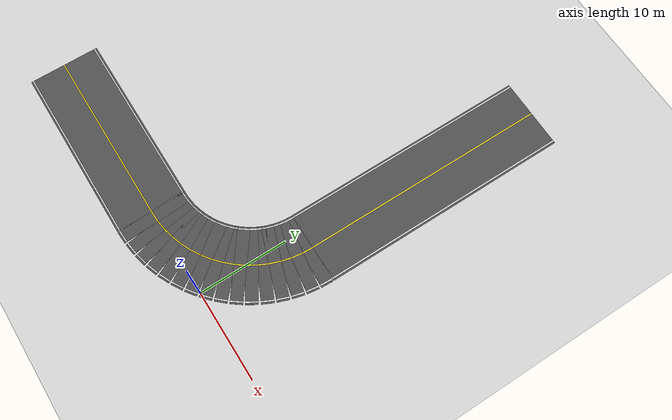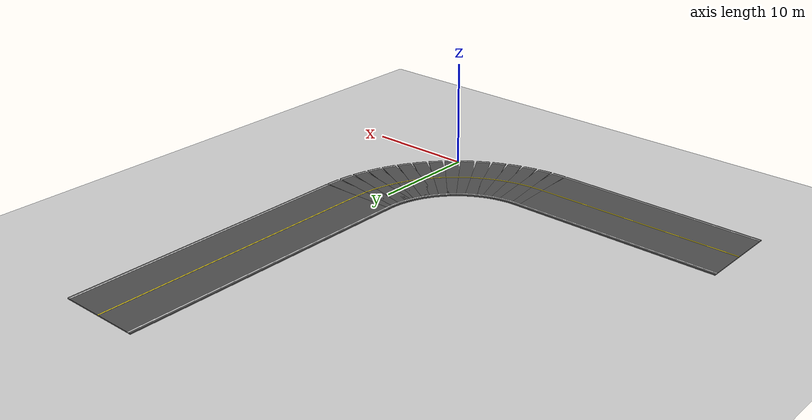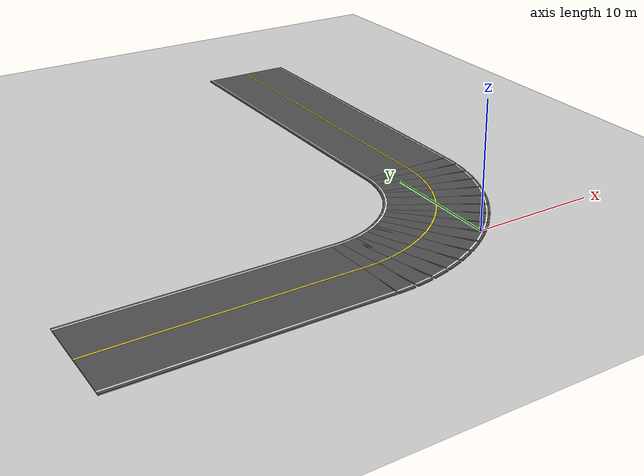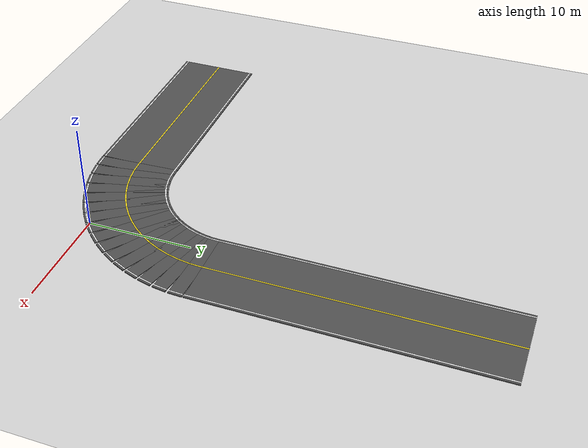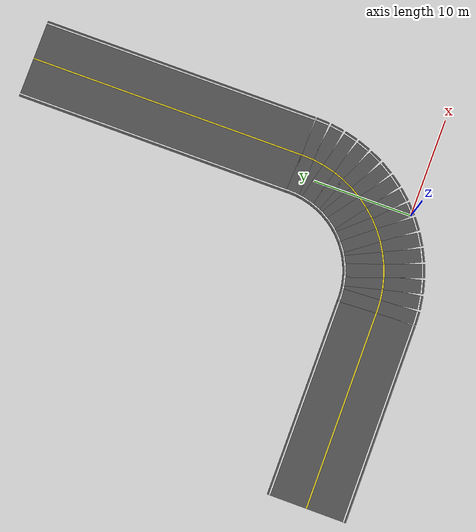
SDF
<?xml version="1.0"?>
<!-- Generated by scripts/generate_curve_course.py; dimensions are metres. -->
<sdf version="1.6">
  <world name="safe_drive_curve_course">
    <physics name="ode" type="ode">
      <max_step_size>0.001</max_step_size>
      <real_time_factor>1.0</real_time_factor>
      <real_time_update_rate>1000</real_time_update_rate>
    </physics>
    <gravity>0 0 -9.81</gravity>
    <include><uri>model://ground_plane</uri><pose>0 0 -0.1 0 0 0</pose></include>
    <include><uri>model://sun</uri></include>
    <scene><ambient>0.45 0.45 0.45 1</ambient><background>0.7 0.85 1 1</background></scene>
    <model name="curve_road"><static>true</static><link name="surface">
        <collision name="west_collision"><pose>-20.0000 0.0000 -0.0500 0 0 0.000000</pose><geometry><box><size>20.0000 8.0000 0.1</size></box></geometry></collision>
        <visual name="west_asphalt"><pose>-20.0000 0.0000 -0.0450 0 0 0.000000</pose><geometry><box><size>20.0000 8.0000 0.1</size></box></geometry><material><script><uri>file://safe_drive_road/materials/scripts</uri><uri>file://safe_drive_road/materials/textures</uri><name>SafeDrive/Asphalt</name></script></material></visual>
        <visual name="west_center"><pose>-20.0000 0.0000 -0.0350 0 0 0.000000</pose><geometry><box><size>20.0000 0.1200 0.1</size></box></geometry><material><ambient>0.95 0.85 0.10 1</ambient><diffuse>0.95 0.85 0.10 1</diffuse></material></visual>
        <visual name="west_edge_-1"><pose>-20.0000 -3.7500 -0.0340 0 0 0.000000</pose><geometry><box><size>20.0000 0.1200 0.1</size></box></geometry><material><ambient>0.95 0.95 0.95 1</ambient><diffuse>0.95 0.95 0.95 1</diffuse></material></visual>
        <visual name="west_edge_1"><pose>-20.0000 3.7500 -0.0340 0 0 0.000000</pose><geometry><box><size>20.0000 0.1200 0.1</size></box></geometry><material><ambient>0.95 0.95 0.95 1</ambient><diffuse>0.95 0.95 0.95 1</diffuse></material></visual>
        <collision name="north_collision"><pose>2.0000 26.0000 -0.0500 0 0 1.570796</pose><geometry><box><size>28.0000 8.0000 0.1</size></box></geometry></collision>
        <visual name="north_asphalt"><pose>2.0000 26.0000 -0.0450 0 0 1.570796</pose><geometry><box><size>28.0000 8.0000 0.1</size></box></geometry><material><script><uri>file://safe_drive_road/materials/scripts</uri><uri>file://safe_drive_road/materials/textures</uri><name>SafeDrive/Asphalt</name></script></material></visual>
        <visual name="north_center"><pose>2.0000 26.0000 -0.0350 0 0 1.570796</pose><geometry><box><size>28.0000 0.1200 0.1</size></box></geometry><material><ambient>0.95 0.85 0.10 1</ambient><diffuse>0.95 0.85 0.10 1</diffuse></material></visual>
        <visual name="north_edge_-1"><pose>5.7500 26.0000 -0.0340 0 0 1.570796</pose><geometry><box><size>28.0000 0.1200 0.1</size></box></geometry><material><ambient>0.95 0.95 0.95 1</ambient><diffuse>0.95 0.95 0.95 1</diffuse></material></visual>
        <visual name="north_edge_1"><pose>-1.7500 26.0000 -0.0340 0 0 1.570796</pose><geometry><box><size>28.0000 0.1200 0.1</size></box></geometry><material><ambient>0.95 0.95 0.95 1</ambient><diffuse>0.95 0.95 0.95 1</diffuse></material></visual>
        <collision name="bend_00_collision"><pose>-9.4112 0.0145 -0.0500 0 0 0.049087</pose><geometry><box><size>1.3381 8.0000 0.1</size></box></geometry></collision>
        <visual name="bend_00_asphalt"><pose>-9.4112 0.0145 -0.0450 0 0 0.049087</pose><geometry><box><size>1.3381 8.0000 0.1</size></box></geometry><material><script><uri>file://safe_drive_road/materials/scripts</uri><uri>file://safe_drive_road/materials/textures</uri><name>SafeDrive/Asphalt</name></script></material></visual>
        <visual name="bend_00_center"><pose>-9.4112 0.0145 -0.0350 0 0 0.049087</pose><geometry><box><size>1.3381 0.1200 0.1</size></box></geometry><material><ambient>0.95 0.85 0.10 1</ambient><diffuse>0.95 0.85 0.10 1</diffuse></material></visual>
        <visual name="bend_00_edge_-1"><pose>-9.2272 -3.7310 -0.0340 0 0 0.049087</pose><geometry><box><size>1.3381 0.1200 0.1</size></box></geometry><material><ambient>0.95 0.95 0.95 1</ambient><diffuse>0.95 0.95 0.95 1</diffuse></material></visual>
        <visual name="bend_00_edge_1"><pose>-9.5952 3.7599 -0.0340 0 0 0.049087</pose><geometry><box><size>1.3381 0.1200 0.1</size></box></geometry><material><ambient>0.95 0.95 0.95 1</ambient><diffuse>0.95 0.95 0.95 1</diffuse></material></visual>
        <collision name="bend_01_collision"><pose>-8.2392 0.1299 -0.0500 0 0 0.147262</pose><geometry><box><size>1.3381 8.0000 0.1</size></box></geometry></collision>
        <visual name="bend_01_asphalt"><pose>-8.2392 0.1299 -0.0450 0 0 0.147262</pose><geometry><box><size>1.3381 8.0000 0.1</size></box></geometry><material><script><uri>file://safe_drive_road/materials/scripts</uri><uri>file://safe_drive_road/materials/textures</uri><name>SafeDrive/Asphalt</name></script></material></visual>
        <visual name="bend_01_center"><pose>-8.2392 0.1299 -0.0350 0 0 0.147262</pose><geometry><box><size>1.3381 0.1200 0.1</size></box></geometry><material><ambient>0.95 0.85 0.10 1</ambient><diffuse>0.95 0.85 0.10 1</diffuse></material></visual>
        <visual name="bend_01_edge_-1"><pose>-7.6890 -3.5795 -0.0340 0 0 0.147262</pose><geometry><box><size>1.3381 0.1200 0.1</size></box></geometry><material><ambient>0.95 0.95 0.95 1</ambient><diffuse>0.95 0.95 0.95 1</diffuse></material></visual>
        <visual name="bend_01_edge_1"><pose>-8.7895 3.8393 -0.0340 0 0 0.147262</pose><geometry><box><size>1.3381 0.1200 0.1</size></box></geometry><material><ambient>0.95 0.95 0.95 1</ambient><diffuse>0.95 0.95 0.95 1</diffuse></material></visual>
        <collision name="bend_02_collision"><pose>-7.0842 0.3596 -0.0500 0 0 0.245437</pose><geometry><box><size>1.3381 8.0000 0.1</size></box></geometry></collision>
        <visual name="bend_02_asphalt"><pose>-7.0842 0.3596 -0.0450 0 0 0.245437</pose><geometry><box><size>1.3381 8.0000 0.1</size></box></geometry><material><script><uri>file://safe_drive_road/materials/scripts</uri><uri>file://safe_drive_road/materials/textures</uri><name>SafeDrive/Asphalt</name></script></material></visual>
        <visual name="bend_02_center"><pose>-7.0842 0.3596 -0.0350 0 0 0.245437</pose><geometry><box><size>1.3381 0.1200 0.1</size></box></geometry><material><ambient>0.95 0.85 0.10 1</ambient><diffuse>0.95 0.85 0.10 1</diffuse></material></visual>
        <visual name="bend_02_edge_-1"><pose>-6.1731 -3.2780 -0.0340 0 0 0.245437</pose><geometry><box><size>1.3381 0.1200 0.1</size></box></geometry><material><ambient>0.95 0.95 0.95 1</ambient><diffuse>0.95 0.95 0.95 1</diffuse></material></visual>
        <visual name="bend_02_edge_1"><pose>-7.9954 3.9972 -0.0340 0 0 0.245437</pose><geometry><box><size>1.3381 0.1200 0.1</size></box></geometry><material><ambient>0.95 0.95 0.95 1</ambient><diffuse>0.95 0.95 0.95 1</diffuse></material></visual>
        <collision name="bend_03_collision"><pose>-5.9573 0.7015 -0.0500 0 0 0.343612</pose><geometry><box><size>1.3381 8.0000 0.1</size></box></geometry></collision>
        <visual name="bend_03_asphalt"><pose>-5.9573 0.7015 -0.0450 0 0 0.343612</pose><geometry><box><size>1.3381 8.0000 0.1</size></box></geometry><material><script><uri>file://safe_drive_road/materials/scripts</uri><uri>file://safe_drive_road/materials/textures</uri><name>SafeDrive/Asphalt</name></script></material></visual>
        <visual name="bend_03_center"><pose>-5.9573 0.7015 -0.0350 0 0 0.343612</pose><geometry><box><size>1.3381 0.1200 0.1</size></box></geometry><material><ambient>0.95 0.85 0.10 1</ambient><diffuse>0.95 0.85 0.10 1</diffuse></material></visual>
        <visual name="bend_03_edge_-1"><pose>-4.6940 -2.8293 -0.0340 0 0 0.343612</pose><geometry><box><size>1.3381 0.1200 0.1</size></box></geometry><material><ambient>0.95 0.95 0.95 1</ambient><diffuse>0.95 0.95 0.95 1</diffuse></material></visual>
        <visual name="bend_03_edge_1"><pose>-7.2207 4.2323 -0.0340 0 0 0.343612</pose><geometry><box><size>1.3381 0.1200 0.1</size></box></geometry><material><ambient>0.95 0.95 0.95 1</ambient><diffuse>0.95 0.95 0.95 1</diffuse></material></visual>
        <collision name="bend_04_collision"><pose>-4.8693 1.1521 -0.0500 0 0 0.441786</pose><geometry><box><size>1.3381 8.0000 0.1</size></box></geometry></collision>
        <visual name="bend_04_asphalt"><pose>-4.8693 1.1521 -0.0450 0 0 0.441786</pose><geometry><box><size>1.3381 8.0000 0.1</size></box></geometry><material><script><uri>file://safe_drive_road/materials/scripts</uri><uri>file://safe_drive_road/materials/textures</uri><name>SafeDrive/Asphalt</name></script></material></visual>
        <visual name="bend_04_center"><pose>-4.8693 1.1521 -0.0350 0 0 0.441786</pose><geometry><box><size>1.3381 0.1200 0.1</size></box></geometry><material><ambient>0.95 0.85 0.10 1</ambient><diffuse>0.95 0.85 0.10 1</diffuse></material></visual>
        <visual name="bend_04_edge_-1"><pose>-3.2660 -2.2378 -0.0340 0 0 0.441786</pose><geometry><box><size>1.3381 0.1200 0.1</size></box></geometry><material><ambient>0.95 0.95 0.95 1</ambient><diffuse>0.95 0.95 0.95 1</diffuse></material></visual>
        <visual name="bend_04_edge_1"><pose>-6.4727 4.5421 -0.0340 0 0 0.441786</pose><geometry><box><size>1.3381 0.1200 0.1</size></box></geometry><material><ambient>0.95 0.95 0.95 1</ambient><diffuse>0.95 0.95 0.95 1</diffuse></material></visual>
        <collision name="bend_05_collision"><pose>-3.8308 1.7073 -0.0500 0 0 0.539961</pose><geometry><box><size>1.3381 8.0000 0.1</size></box></geometry></collision>
        <visual name="bend_05_asphalt"><pose>-3.8308 1.7073 -0.0450 0 0 0.539961</pose><geometry><box><size>1.3381 8.0000 0.1</size></box></geometry><material><script><uri>file://safe_drive_road/materials/scripts</uri><uri>file://safe_drive_road/materials/textures</uri><name>SafeDrive/Asphalt</name></script></material></visual>
        <visual name="bend_05_center"><pose>-3.8308 1.7073 -0.0350 0 0 0.539961</pose><geometry><box><size>1.3381 0.1200 0.1</size></box></geometry><material><ambient>0.95 0.85 0.10 1</ambient><diffuse>0.95 0.85 0.10 1</diffuse></material></visual>
        <visual name="bend_05_edge_-1"><pose>-1.9029 -1.5092 -0.0340 0 0 0.539961</pose><geometry><box><size>1.3381 0.1200 0.1</size></box></geometry><material><ambient>0.95 0.95 0.95 1</ambient><diffuse>0.95 0.95 0.95 1</diffuse></material></visual>
        <visual name="bend_05_edge_1"><pose>-5.7587 4.9237 -0.0340 0 0 0.539961</pose><geometry><box><size>1.3381 0.1200 0.1</size></box></geometry><material><ambient>0.95 0.95 0.95 1</ambient><diffuse>0.95 0.95 0.95 1</diffuse></material></visual>
        <collision name="bend_06_collision"><pose>-2.8516 2.3615 -0.0500 0 0 0.638136</pose><geometry><box><size>1.3381 8.0000 0.1</size></box></geometry></collision>
        <visual name="bend_06_asphalt"><pose>-2.8516 2.3615 -0.0450 0 0 0.638136</pose><geometry><box><size>1.3381 8.0000 0.1</size></box></geometry><material><script><uri>file://safe_drive_road/materials/scripts</uri><uri>file://safe_drive_road/materials/textures</uri><name>SafeDrive/Asphalt</name></script></material></visual>
        <visual name="bend_06_center"><pose>-2.8516 2.3615 -0.0350 0 0 0.638136</pose><geometry><box><size>1.3381 0.1200 0.1</size></box></geometry><material><ambient>0.95 0.85 0.10 1</ambient><diffuse>0.95 0.85 0.10 1</diffuse></material></visual>
        <visual name="bend_06_edge_-1"><pose>-0.6177 -0.6505 -0.0340 0 0 0.638136</pose><geometry><box><size>1.3381 0.1200 0.1</size></box></geometry><material><ambient>0.95 0.95 0.95 1</ambient><diffuse>0.95 0.95 0.95 1</diffuse></material></visual>
        <visual name="bend_06_edge_1"><pose>-5.0855 5.3735 -0.0340 0 0 0.638136</pose><geometry><box><size>1.3381 0.1200 0.1</size></box></geometry><material><ambient>0.95 0.95 0.95 1</ambient><diffuse>0.95 0.95 0.95 1</diffuse></material></visual>
        <collision name="bend_07_collision"><pose>-1.9413 3.1086 -0.0500 0 0 0.736311</pose><geometry><box><size>1.3381 8.0000 0.1</size></box></geometry></collision>
        <visual name="bend_07_asphalt"><pose>-1.9413 3.1086 -0.0450 0 0 0.736311</pose><geometry><box><size>1.3381 8.0000 0.1</size></box></geometry><material><script><uri>file://safe_drive_road/materials/scripts</uri><uri>file://safe_drive_road/materials/textures</uri><name>SafeDrive/Asphalt</name></script></material></visual>
        <visual name="bend_07_center"><pose>-1.9413 3.1086 -0.0350 0 0 0.736311</pose><geometry><box><size>1.3381 0.1200 0.1</size></box></geometry><material><ambient>0.95 0.85 0.10 1</ambient><diffuse>0.95 0.85 0.10 1</diffuse></material></visual>
        <visual name="bend_07_edge_-1"><pose>0.5771 0.3300 -0.0340 0 0 0.736311</pose><geometry><box><size>1.3381 0.1200 0.1</size></box></geometry><material><ambient>0.95 0.95 0.95 1</ambient><diffuse>0.95 0.95 0.95 1</diffuse></material></visual>
        <visual name="bend_07_edge_1"><pose>-4.4596 5.8872 -0.0340 0 0 0.736311</pose><geometry><box><size>1.3381 0.1200 0.1</size></box></geometry><material><ambient>0.95 0.95 0.95 1</ambient><diffuse>0.95 0.95 0.95 1</diffuse></material></visual>
        <collision name="bend_08_collision"><pose>-1.1086 3.9413 -0.0500 0 0 0.834486</pose><geometry><box><size>1.3381 8.0000 0.1</size></box></geometry></collision>
        <visual name="bend_08_asphalt"><pose>-1.1086 3.9413 -0.0450 0 0 0.834486</pose><geometry><box><size>1.3381 8.0000 0.1</size></box></geometry><material><script><uri>file://safe_drive_road/materials/scripts</uri><uri>file://safe_drive_road/materials/textures</uri><name>SafeDrive/Asphalt</name></script></material></visual>
        <visual name="bend_08_center"><pose>-1.1086 3.9413 -0.0350 0 0 0.834486</pose><geometry><box><size>1.3381 0.1200 0.1</size></box></geometry><material><ambient>0.95 0.85 0.10 1</ambient><diffuse>0.95 0.85 0.10 1</diffuse></material></visual>
        <visual name="bend_08_edge_-1"><pose>1.6700 1.4229 -0.0340 0 0 0.834486</pose><geometry><box><size>1.3381 0.1200 0.1</size></box></geometry><material><ambient>0.95 0.95 0.95 1</ambient><diffuse>0.95 0.95 0.95 1</diffuse></material></visual>
        <visual name="bend_08_edge_1"><pose>-3.8872 6.4596 -0.0340 0 0 0.834486</pose><geometry><box><size>1.3381 0.1200 0.1</size></box></geometry><material><ambient>0.95 0.95 0.95 1</ambient><diffuse>0.95 0.95 0.95 1</diffuse></material></visual>
        <collision name="bend_09_collision"><pose>-0.3615 4.8516 -0.0500 0 0 0.932660</pose><geometry><box><size>1.3381 8.0000 0.1</size></box></geometry></collision>
        <visual name="bend_09_asphalt"><pose>-0.3615 4.8516 -0.0450 0 0 0.932660</pose><geometry><box><size>1.3381 8.0000 0.1</size></box></geometry><material><script><uri>file://safe_drive_road/materials/scripts</uri><uri>file://safe_drive_road/materials/textures</uri><name>SafeDrive/Asphalt</name></script></material></visual>
        <visual name="bend_09_center"><pose>-0.3615 4.8516 -0.0350 0 0 0.932660</pose><geometry><box><size>1.3381 0.1200 0.1</size></box></geometry><material><ambient>0.95 0.85 0.10 1</ambient><diffuse>0.95 0.85 0.10 1</diffuse></material></visual>
        <visual name="bend_09_edge_-1"><pose>2.6505 2.6177 -0.0340 0 0 0.932660</pose><geometry><box><size>1.3381 0.1200 0.1</size></box></geometry><material><ambient>0.95 0.95 0.95 1</ambient><diffuse>0.95 0.95 0.95 1</diffuse></material></visual>
        <visual name="bend_09_edge_1"><pose>-3.3735 7.0855 -0.0340 0 0 0.932660</pose><geometry><box><size>1.3381 0.1200 0.1</size></box></geometry><material><ambient>0.95 0.95 0.95 1</ambient><diffuse>0.95 0.95 0.95 1</diffuse></material></visual>
        <collision name="bend_10_collision"><pose>0.2927 5.8308 -0.0500 0 0 1.030835</pose><geometry><box><size>1.3381 8.0000 0.1</size></box></geometry></collision>
        <visual name="bend_10_asphalt"><pose>0.2927 5.8308 -0.0450 0 0 1.030835</pose><geometry><box><size>1.3381 8.0000 0.1</size></box></geometry><material><script><uri>file://safe_drive_road/materials/scripts</uri><uri>file://safe_drive_road/materials/textures</uri><name>SafeDrive/Asphalt</name></script></material></visual>
        <visual name="bend_10_center"><pose>0.2927 5.8308 -0.0350 0 0 1.030835</pose><geometry><box><size>1.3381 0.1200 0.1</size></box></geometry><material><ambient>0.95 0.85 0.10 1</ambient><diffuse>0.95 0.85 0.10 1</diffuse></material></visual>
        <visual name="bend_10_edge_-1"><pose>3.5092 3.9029 -0.0340 0 0 1.030835</pose><geometry><box><size>1.3381 0.1200 0.1</size></box></geometry><material><ambient>0.95 0.95 0.95 1</ambient><diffuse>0.95 0.95 0.95 1</diffuse></material></visual>
        <visual name="bend_10_edge_1"><pose>-2.9237 7.7587 -0.0340 0 0 1.030835</pose><geometry><box><size>1.3381 0.1200 0.1</size></box></geometry><material><ambient>0.95 0.95 0.95 1</ambient><diffuse>0.95 0.95 0.95 1</diffuse></material></visual>
        <collision name="bend_11_collision"><pose>0.8479 6.8693 -0.0500 0 0 1.129010</pose><geometry><box><size>1.3381 8.0000 0.1</size></box></geometry></collision>
        <visual name="bend_11_asphalt"><pose>0.8479 6.8693 -0.0450 0 0 1.129010</pose><geometry><box><size>1.3381 8.0000 0.1</size></box></geometry><material><script><uri>file://safe_drive_road/materials/scripts</uri><uri>file://safe_drive_road/materials/textures</uri><name>SafeDrive/Asphalt</name></script></material></visual>
        <visual name="bend_11_center"><pose>0.8479 6.8693 -0.0350 0 0 1.129010</pose><geometry><box><size>1.3381 0.1200 0.1</size></box></geometry><material><ambient>0.95 0.85 0.10 1</ambient><diffuse>0.95 0.85 0.10 1</diffuse></material></visual>
        <visual name="bend_11_edge_-1"><pose>4.2378 5.2660 -0.0340 0 0 1.129010</pose><geometry><box><size>1.3381 0.1200 0.1</size></box></geometry><material><ambient>0.95 0.95 0.95 1</ambient><diffuse>0.95 0.95 0.95 1</diffuse></material></visual>
        <visual name="bend_11_edge_1"><pose>-2.5421 8.4727 -0.0340 0 0 1.129010</pose><geometry><box><size>1.3381 0.1200 0.1</size></box></geometry><material><ambient>0.95 0.95 0.95 1</ambient><diffuse>0.95 0.95 0.95 1</diffuse></material></visual>
        <collision name="bend_12_collision"><pose>1.2985 7.9573 -0.0500 0 0 1.227185</pose><geometry><box><size>1.3381 8.0000 0.1</size></box></geometry></collision>
        <visual name="bend_12_asphalt"><pose>1.2985 7.9573 -0.0450 0 0 1.227185</pose><geometry><box><size>1.3381 8.0000 0.1</size></box></geometry><material><script><uri>file://safe_drive_road/materials/scripts</uri><uri>file://safe_drive_road/materials/textures</uri><name>SafeDrive/Asphalt</name></script></material></visual>
        <visual name="bend_12_center"><pose>1.2985 7.9573 -0.0350 0 0 1.227185</pose><geometry><box><size>1.3381 0.1200 0.1</size></box></geometry><material><ambient>0.95 0.85 0.10 1</ambient><diffuse>0.95 0.85 0.10 1</diffuse></material></visual>
        <visual name="bend_12_edge_-1"><pose>4.8293 6.6940 -0.0340 0 0 1.227185</pose><geometry><box><size>1.3381 0.1200 0.1</size></box></geometry><material><ambient>0.95 0.95 0.95 1</ambient><diffuse>0.95 0.95 0.95 1</diffuse></material></visual>
        <visual name="bend_12_edge_1"><pose>-2.2323 9.2207 -0.0340 0 0 1.227185</pose><geometry><box><size>1.3381 0.1200 0.1</size></box></geometry><material><ambient>0.95 0.95 0.95 1</ambient><diffuse>0.95 0.95 0.95 1</diffuse></material></visual>
        <collision name="bend_13_collision"><pose>1.6404 9.0842 -0.0500 0 0 1.325359</pose><geometry><box><size>1.3381 8.0000 0.1</size></box></geometry></collision>
        <visual name="bend_13_asphalt"><pose>1.6404 9.0842 -0.0450 0 0 1.325359</pose><geometry><box><size>1.3381 8.0000 0.1</size></box></geometry><material><script><uri>file://safe_drive_road/materials/scripts</uri><uri>file://safe_drive_road/materials/textures</uri><name>SafeDrive/Asphalt</name></script></material></visual>
        <visual name="bend_13_center"><pose>1.6404 9.0842 -0.0350 0 0 1.325359</pose><geometry><box><size>1.3381 0.1200 0.1</size></box></geometry><material><ambient>0.95 0.85 0.10 1</ambient><diffuse>0.95 0.85 0.10 1</diffuse></material></visual>
        <visual name="bend_13_edge_-1"><pose>5.2780 8.1731 -0.0340 0 0 1.325359</pose><geometry><box><size>1.3381 0.1200 0.1</size></box></geometry><material><ambient>0.95 0.95 0.95 1</ambient><diffuse>0.95 0.95 0.95 1</diffuse></material></visual>
        <visual name="bend_13_edge_1"><pose>-1.9972 9.9954 -0.0340 0 0 1.325359</pose><geometry><box><size>1.3381 0.1200 0.1</size></box></geometry><material><ambient>0.95 0.95 0.95 1</ambient><diffuse>0.95 0.95 0.95 1</diffuse></material></visual>
        <collision name="bend_14_collision"><pose>1.8701 10.2392 -0.0500 0 0 1.423534</pose><geometry><box><size>1.3381 8.0000 0.1</size></box></geometry></collision>
        <visual name="bend_14_asphalt"><pose>1.8701 10.2392 -0.0450 0 0 1.423534</pose><geometry><box><size>1.3381 8.0000 0.1</size></box></geometry><material><script><uri>file://safe_drive_road/materials/scripts</uri><uri>file://safe_drive_road/materials/textures</uri><name>SafeDrive/Asphalt</name></script></material></visual>
        <visual name="bend_14_center"><pose>1.8701 10.2392 -0.0350 0 0 1.423534</pose><geometry><box><size>1.3381 0.1200 0.1</size></box></geometry><material><ambient>0.95 0.85 0.10 1</ambient><diffuse>0.95 0.85 0.10 1</diffuse></material></visual>
        <visual name="bend_14_edge_-1"><pose>5.5795 9.6890 -0.0340 0 0 1.423534</pose><geometry><box><size>1.3381 0.1200 0.1</size></box></geometry><material><ambient>0.95 0.95 0.95 1</ambient><diffuse>0.95 0.95 0.95 1</diffuse></material></visual>
        <visual name="bend_14_edge_1"><pose>-1.8393 10.7895 -0.0340 0 0 1.423534</pose><geometry><box><size>1.3381 0.1200 0.1</size></box></geometry><material><ambient>0.95 0.95 0.95 1</ambient><diffuse>0.95 0.95 0.95 1</diffuse></material></visual>
        <collision name="bend_15_collision"><pose>1.9855 11.4112 -0.0500 0 0 1.521709</pose><geometry><box><size>1.3381 8.0000 0.1</size></box></geometry></collision>
        <visual name="bend_15_asphalt"><pose>1.9855 11.4112 -0.0450 0 0 1.521709</pose><geometry><box><size>1.3381 8.0000 0.1</size></box></geometry><material><script><uri>file://safe_drive_road/materials/scripts</uri><uri>file://safe_drive_road/materials/textures</uri><name>SafeDrive/Asphalt</name></script></material></visual>
        <visual name="bend_15_center"><pose>1.9855 11.4112 -0.0350 0 0 1.521709</pose><geometry><box><size>1.3381 0.1200 0.1</size></box></geometry><material><ambient>0.95 0.85 0.10 1</ambient><diffuse>0.95 0.85 0.10 1</diffuse></material></visual>
        <visual name="bend_15_edge_-1"><pose>5.7310 11.2272 -0.0340 0 0 1.521709</pose><geometry><box><size>1.3381 0.1200 0.1</size></box></geometry><material><ambient>0.95 0.95 0.95 1</ambient><diffuse>0.95 0.95 0.95 1</diffuse></material></visual>
        <visual name="bend_15_edge_1"><pose>-1.7599 11.5952 -0.0340 0 0 1.521709</pose><geometry><box><size>1.3381 0.1200 0.1</size></box></geometry><material><ambient>0.95 0.95 0.95 1</ambient><diffuse>0.95 0.95 0.95 1</diffuse></material></visual>
    </link></model>
  </world>
</sdf>
